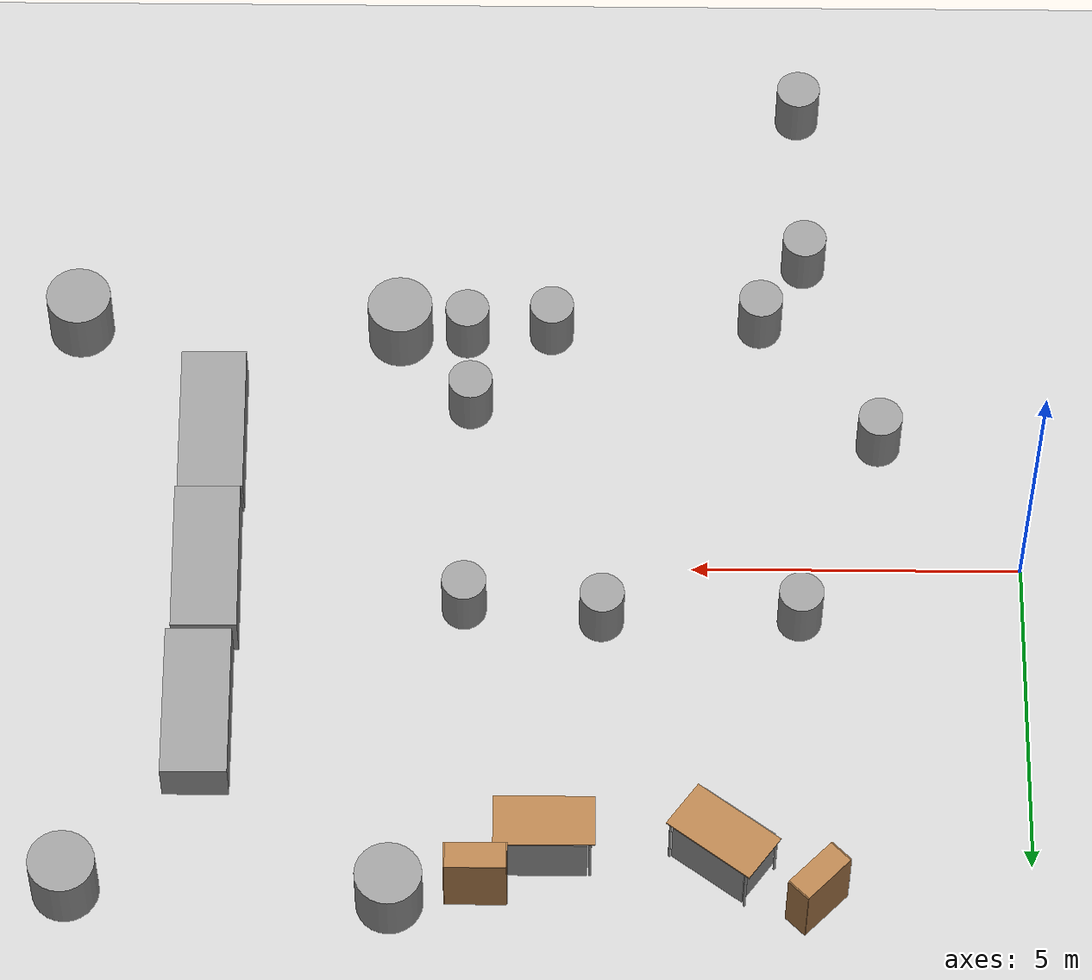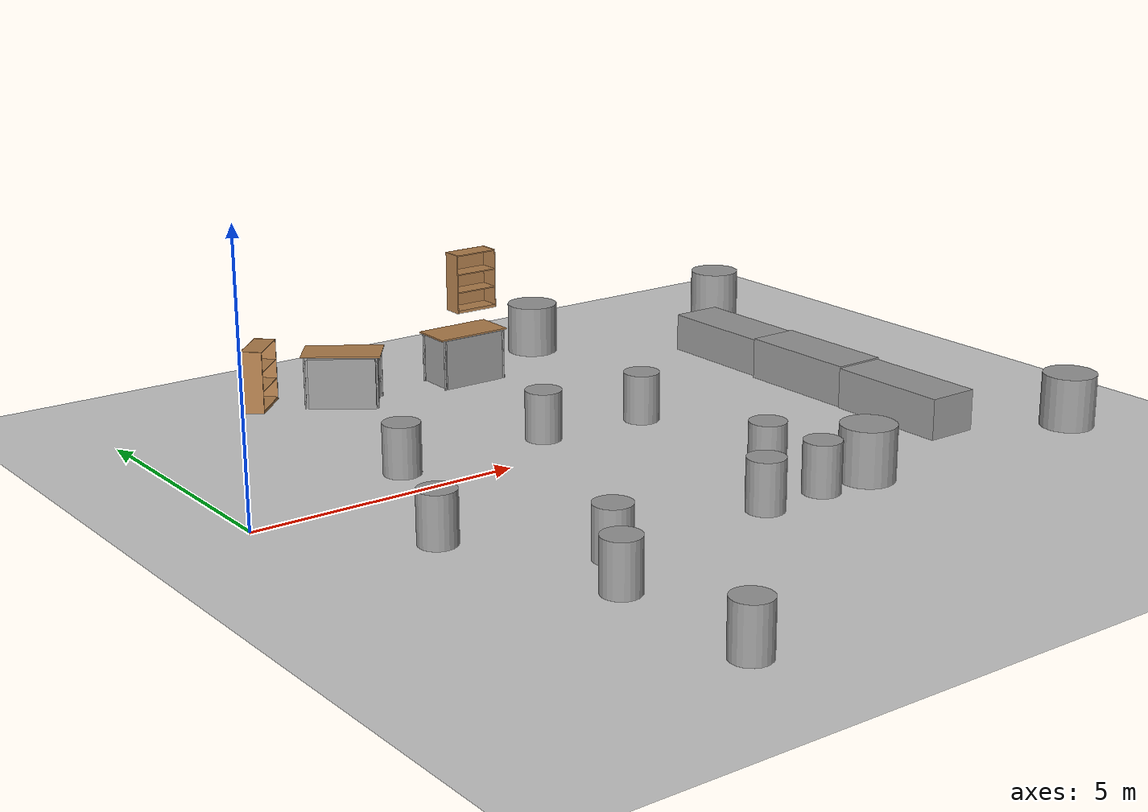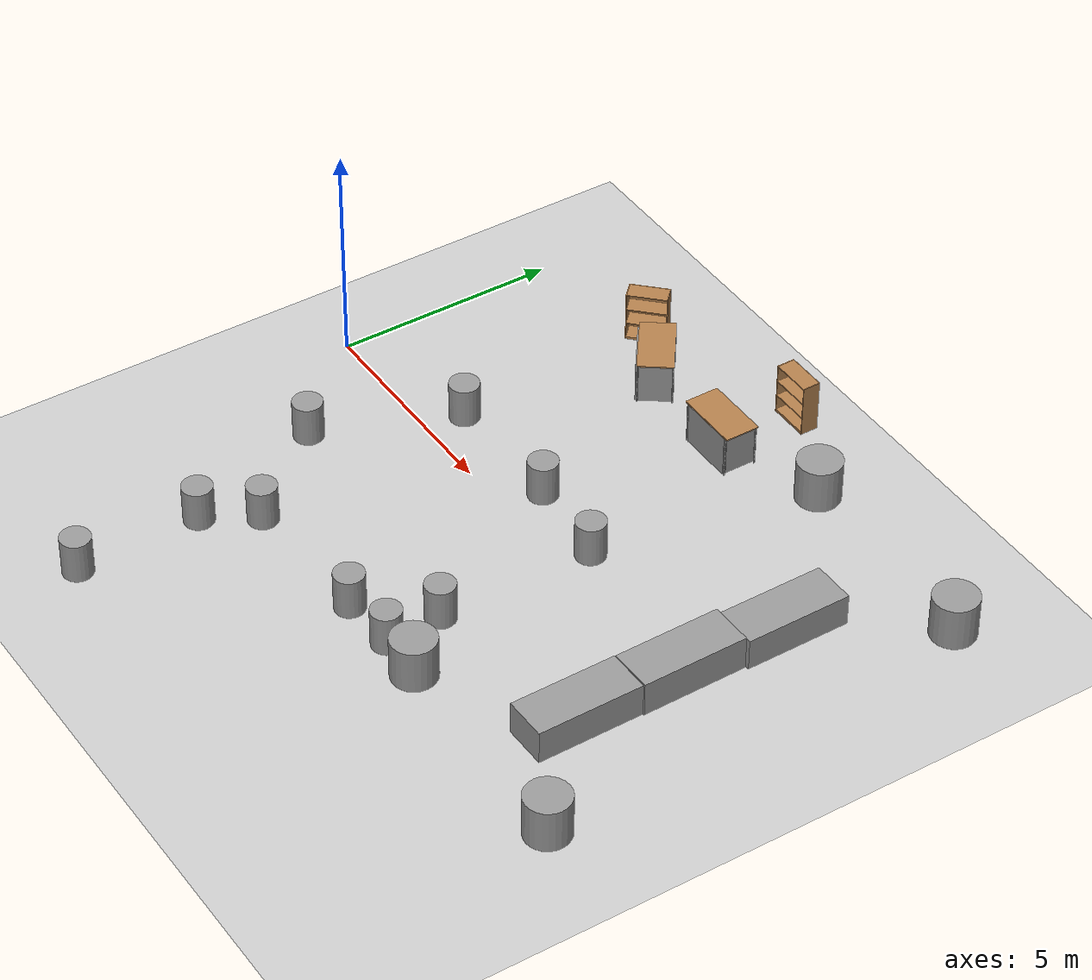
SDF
<sdf version="1.6">
 <world name="default">
  <model name="ground_plane">
   <static>true</static>
   <link name="link">
    <collision name="collision">
     <geometry><plane><normal>0 0 1</normal><size>100 100</size></plane></geometry>
     <surface>
      <contact><collide_bitmask>65535</collide_bitmask></contact>
      <friction><ode><mu>100</mu><mu2>50</mu2></ode></friction>
     </surface>
    </collision>
    <visual name="visual">
     <cast_shadows>0</cast_shadows>
     <geometry><plane><normal>0 0 1</normal><size>100 100</size></plane></geometry>
     <material>
      <script><uri>file://media/materials/scripts/gazebo.material</uri><name>Gazebo/Grey</name></script>
     </material>
    </visual>
   </link>
  </model>
  <model name="bookshelf">
   <static>true</static>
   <link name="link">
    <inertial><mass>1</mass></inertial>
    <collision name="back">
     <pose>0 0.005 0.6 0 -0 0</pose>
     <geometry><box><size>0.9 0.01 1.2</size></box></geometry>
    </collision>
    <visual name="visual1">
     <pose>0 0.005 0.6 0 -0 0</pose>
     <geometry><box><size>0.9 0.01 1.2</size></box></geometry>
     <material>
      <script><uri>file://media/materials/scripts/gazebo.material</uri><name>Gazebo/Wood</name></script>
     </material>
    </visual>
    <collision name="left_side">
     <pose>0.45 -0.195 0.6 0 -0 0</pose>
     <geometry><box><size>0.02 0.4 1.2</size></box></geometry>
    </collision>
    <visual name="visual2">
     <pose>0.45 -0.195 0.6 0 -0 0</pose>
     <geometry><box><size>0.02 0.4 1.2</size></box></geometry>
     <material>
      <script><uri>file://media/materials/scripts/gazebo.material</uri><name>Gazebo/Wood</name></script>
     </material>
    </visual>
    <collision name="right_side">
     <pose>-0.45 -0.195 0.6 0 -0 0</pose>
     <geometry><box><size>0.02 0.4 1.2</size></box></geometry>
    </collision>
    <visual name="visual3">
     <pose>-0.45 -0.195 0.6 0 -0 0</pose>
     <geometry><box><size>0.02 0.4 1.2</size></box></geometry>
     <material>
      <script><uri>file://media/materials/scripts/gazebo.material</uri><name>Gazebo/Wood</name></script>
     </material>
    </visual>
    <collision name="bottom">
     <pose>0 -0.195 0.03 0 -0 0</pose>
     <geometry><box><size>0.88 0.4 0.06</size></box></geometry>
    </collision>
    <visual name="visual4">
     <pose>0 -0.195 0.03 0 -0 0</pose>
     <geometry><box><size>0.88 0.4 0.06</size></box></geometry>
     <material>
      <script><uri>file://media/materials/scripts/gazebo.material</uri><name>Gazebo/Wood</name></script>
     </material>
    </visual>
    <collision name="top">
     <pose>0 -0.195 1.19 0 -0 0</pose>
     <geometry><box><size>0.88 0.4 0.02</size></box></geometry>
    </collision>
    <visual name="visual5">
     <pose>0 -0.195 1.19 0 -0 0</pose>
     <geometry><box><size>0.88 0.4 0.02</size></box></geometry>
     <material>
      <script><uri>file://media/materials/scripts/gazebo.material</uri><name>Gazebo/Wood</name></script>
     </material>
    </visual>
    <collision name="low_shelf">
     <pose>0 -0.195 0.43 0 -0 0</pose>
     <geometry><box><size>0.88 0.4 0.02</size></box></geometry>
    </collision>
    <visual name="visual6">
     <pose>0 -0.195 0.43 0 -0 0</pose>
     <geometry><box><size>0.88 0.4 0.02</size></box></geometry>
     <material>
      <script><uri>file://media/materials/scripts/gazebo.material</uri><name>Gazebo/Wood</name></script>
     </material>
    </visual>
    <collision name="high_shelf">
     <pose>0 -0.195 0.8 0 -0 0</pose>
     <geometry><box><size>0.88 0.4 0.02</size></box></geometry>
    </collision>
    <visual name="visual7">
     <pose>0 -0.195 0.8 0 -0 0</pose>
     <geometry><box><size>0.88 0.4 0.02</size></box></geometry>
     <material>
      <script><uri>file://media/materials/scripts/gazebo.material</uri><name>Gazebo/Wood</name></script>
     </material>
    </visual>
   </link>
   <pose>8.20219 6.18787 1.03065 0 -0 0</pose>
  </model>
  <model name="bookshelf_0">
   <static>true</static>
   <link name="link">
    <inertial><mass>1</mass></inertial>
    <collision name="back">
     <pose>0 0.005 0.6 0 -0 0</pose>
     <geometry><box><size>0.9 0.01 1.2</size></box></geometry>
    </collision>
    <visual name="visual1">
     <pose>0 0.005 0.6 0 -0 0</pose>
     <geometry><box><size>0.9 0.01 1.2</size></box></geometry>
     <material>
      <script><uri>file://media/materials/scripts/gazebo.material</uri><name>Gazebo/Wood</name></script>
     </material>
    </visual>
    <collision name="left_side">
     <pose>0.45 -0.195 0.6 0 -0 0</pose>
     <geometry><box><size>0.02 0.4 1.2</size></box></geometry>
    </collision>
    <visual name="visual2">
     <pose>0.45 -0.195 0.6 0 -0 0</pose>
     <geometry><box><size>0.02 0.4 1.2</size></box></geometry>
     <material>
      <script><uri>file://media/materials/scripts/gazebo.material</uri><name>Gazebo/Wood</name></script>
     </material>
    </visual>
    <collision name="right_side">
     <pose>-0.45 -0.195 0.6 0 -0 0</pose>
     <geometry><box><size>0.02 0.4 1.2</size></box></geometry>
    </collision>
    <visual name="visual3">
     <pose>-0.45 -0.195 0.6 0 -0 0</pose>
     <geometry><box><size>0.02 0.4 1.2</size></box></geometry>
     <material>
      <script><uri>file://media/materials/scripts/gazebo.material</uri><name>Gazebo/Wood</name></script>
     </material>
    </visual>
    <collision name="bottom">
     <pose>0 -0.195 0.03 0 -0 0</pose>
     <geometry><box><size>0.88 0.4 0.06</size></box></geometry>
    </collision>
    <visual name="visual4">
     <pose>0 -0.195 0.03 0 -0 0</pose>
     <geometry><box><size>0.88 0.4 0.06</size></box></geometry>
     <material>
      <script><uri>file://media/materials/scripts/gazebo.material</uri><name>Gazebo/Wood</name></script>
     </material>
    </visual>
    <collision name="top">
     <pose>0 -0.195 1.19 0 -0 0</pose>
     <geometry><box><size>0.88 0.4 0.02</size></box></geometry>
    </collision>
    <visual name="visual5">
     <pose>0 -0.195 1.19 0 -0 0</pose>
     <geometry><box><size>0.88 0.4 0.02</size></box></geometry>
     <material>
      <script><uri>file://media/materials/scripts/gazebo.material</uri><name>Gazebo/Wood</name></script>
     </material>
    </visual>
    <collision name="low_shelf">
     <pose>0 -0.195 0.43 0 -0 0</pose>
     <geometry><box><size>0.88 0.4 0.02</size></box></geometry>
    </collision>
    <visual name="visual6">
     <pose>0 -0.195 0.43 0 -0 0</pose>
     <geometry><box><size>0.88 0.4 0.02</size></box></geometry>
     <material>
      <script><uri>file://media/materials/scripts/gazebo.material</uri><name>Gazebo/Wood</name></script>
     </material>
    </visual>
    <collision name="high_shelf">
     <pose>0 -0.195 0.8 0 -0 0</pose>
     <geometry><box><size>0.88 0.4 0.02</size></box></geometry>
    </collision>
    <visual name="visual7">
     <pose>0 -0.195 0.8 0 -0 0</pose>
     <geometry><box><size>0.88 0.4 0.02</size></box></geometry>
     <material>
      <script><uri>file://media/materials/scripts/gazebo.material</uri><name>Gazebo/Wood</name></script>
     </material>
    </visual>
   </link>
   <pose>3.06528 5.8186 0 0 -0 0.790449</pose>
  </model>
  <model name="table">
   <static>true</static>
   <link name="link">
    <collision name="surface">
     <pose>0 0 1 0 -0 0</pose>
     <geometry><box><size>1.5 0.8 0.03</size></box></geometry>
     <surface><friction><ode><mu>0.6</mu><mu2>0.6</mu2></ode></friction></surface>
    </collision>
    <visual name="visual1">
     <pose>0 0 1 0 -0 0</pose>
     <geometry><box><size>1.5 0.8 0.03</size></box></geometry>
     <material>
      <script><uri>file://media/materials/scripts/gazebo.material</uri><name>Gazebo/Wood</name></script>
     </material>
    </visual>
    <collision name="front_left_leg">
     <pose>0.68 0.38 0.5 0 -0 0</pose>
     <geometry><cylinder><radius>0.02</radius><length>1</length></cylinder></geometry>
    </collision>
    <visual name="front_left_leg">
     <pose>0.68 0.38 0.5 0 -0 0</pose>
     <geometry><cylinder><radius>0.02</radius><length>1</length></cylinder></geometry>
     <material>
      <script><uri>file://media/materials/scripts/gazebo.material</uri><name>Gazebo/Grey</name></script>
     </material>
    </visual>
    <collision name="front_right_leg">
     <pose>0.68 -0.38 0.5 0 -0 0</pose>
     <geometry><cylinder><radius>0.02</radius><length>1</length></cylinder></geometry>
    </collision>
    <visual name="front_right_leg">
     <pose>0.68 -0.38 0.5 0 -0 0</pose>
     <geometry><cylinder><radius>0.02</radius><length>1</length></cylinder></geometry>
     <material>
      <script><uri>file://media/materials/scripts/gazebo.material</uri><name>Gazebo/Grey</name></script>
     </material>
    </visual>
    <collision name="back_right_leg">
     <pose>-0.68 -0.38 0.5 0 -0 0</pose>
     <geometry><cylinder><radius>0.02</radius><length>1</length></cylinder></geometry>
    </collision>
    <visual name="back_right_leg">
     <pose>-0.68 -0.38 0.5 0 -0 0</pose>
     <geometry><cylinder><radius>0.02</radius><length>1</length></cylinder></geometry>
     <material>
      <script><uri>file://media/materials/scripts/gazebo.material</uri><name>Gazebo/Grey</name></script>
     </material>
    </visual>
    <collision name="back_left_leg">
     <pose>-0.68 0.38 0.5 0 -0 0</pose>
     <geometry><cylinder><radius>0.02</radius><length>1</length></cylinder></geometry>
    </collision>
    <visual name="back_left_leg">
     <pose>-0.68 0.38 0.5 0 -0 0</pose>
     <geometry><cylinder><radius>0.02</radius><length>1</length></cylinder></geometry>
     <material>
      <script><uri>file://media/materials/scripts/gazebo.material</uri><name>Gazebo/Grey</name></script>
     </material>
    </visual>
   </link>
   <pose>7.22002 4.80872 0 0 -0 0</pose>
  </model>
  <model name="table_0">
   <static>true</static>
   <link name="link">
    <collision name="surface">
     <pose>0 0 1 0 -0 0</pose>
     <geometry><box><size>1.5 0.8 0.03</size></box></geometry>
     <surface><friction><ode><mu>0.6</mu><mu2>0.6</mu2></ode></friction></surface>
    </collision>
    <visual name="visual1">
     <pose>0 0 1 0 -0 0</pose>
     <geometry><box><size>1.5 0.8 0.03</size></box></geometry>
     <material>
      <script><uri>file://media/materials/scripts/gazebo.material</uri><name>Gazebo/Wood</name></script>
     </material>
    </visual>
    <collision name="front_left_leg">
     <pose>0.68 0.38 0.5 0 -0 0</pose>
     <geometry><cylinder><radius>0.02</radius><length>1</length></cylinder></geometry>
    </collision>
    <visual name="front_left_leg">
     <pose>0.68 0.38 0.5 0 -0 0</pose>
     <geometry><cylinder><radius>0.02</radius><length>1</length></cylinder></geometry>
     <material>
      <script><uri>file://media/materials/scripts/gazebo.material</uri><name>Gazebo/Grey</name></script>
     </material>
    </visual>
    <collision name="front_right_leg">
     <pose>0.68 -0.38 0.5 0 -0 0</pose>
     <geometry><cylinder><radius>0.02</radius><length>1</length></cylinder></geometry>
    </collision>
    <visual name="front_right_leg">
     <pose>0.68 -0.38 0.5 0 -0 0</pose>
     <geometry><cylinder><radius>0.02</radius><length>1</length></cylinder></geometry>
     <material>
      <script><uri>file://media/materials/scripts/gazebo.material</uri><name>Gazebo/Grey</name></script>
     </material>
    </visual>
    <collision name="back_right_leg">
     <pose>-0.68 -0.38 0.5 0 -0 0</pose>
     <geometry><cylinder><radius>0.02</radius><length>1</length></cylinder></geometry>
    </collision>
    <visual name="back_right_leg">
     <pose>-0.68 -0.38 0.5 0 -0 0</pose>
     <geometry><cylinder><radius>0.02</radius><length>1</length></cylinder></geometry>
     <material>
      <script><uri>file://media/materials/scripts/gazebo.material</uri><name>Gazebo/Grey</name></script>
     </material>
    </visual>
    <collision name="back_left_leg">
     <pose>-0.68 0.38 0.5 0 -0 0</pose>
     <geometry><cylinder><radius>0.02</radius><length>1</length></cylinder></geometry>
    </collision>
    <visual name="back_left_leg">
     <pose>-0.68 0.38 0.5 0 -0 0</pose>
     <geometry><cylinder><radius>0.02</radius><length>1</length></cylinder></geometry>
     <material>
      <script><uri>file://media/materials/scripts/gazebo.material</uri><name>Gazebo/Grey</name></script>
     </material>
    </visual>
   </link>
   <pose>4.59087 4.95601 0 0 0 -0.636579</pose>
  </model>
  <model name="unit_cylinder_4">
   <static>true</static>
   <pose>14.2565 5.52747 0.499997 4e-06 4e-06 -0</pose>
   <link name="link">
    <inertial>
     <mass>1</mass>
     <inertia><ixx>0.145833</ixx><ixy>0</ixy><ixz>0</ixz><iyy>0.145833</iyy><iyz>0</iyz><izz>0.125</izz></inertia>
    </inertial>
    <collision name="collision">
     <geometry><cylinder><radius>0.5</radius><length>1</length></cylinder></geometry>
    </collision>
    <visual name="visual">
     <geometry><cylinder><radius>0.5</radius><length>1</length></cylinder></geometry>
     <material>
      <script><name>Gazebo/Grey</name><uri>file://media/materials/scripts/gazebo.material</uri></script>
     </material>
    </visual>
   </link>
  </model>
  <model name="unit_cylinder_5">
   <static>true</static>
   <pose>14.5051 -4.23634 0.5 0 -0 5e-06</pose>
   <link name="link">
    <inertial>
     <mass>1</mass>
     <inertia><ixx>0.145833</ixx><ixy>0</ixy><ixz>0</ixz><iyy>0.145833</iyy><iyz>0</iyz><izz>0.125</izz></inertia>
    </inertial>
    <collision name="collision">
     <geometry><cylinder><radius>0.5</radius><length>1</length></cylinder></geometry>
    </collision>
    <visual name="visual">
     <geometry><cylinder><radius>0.5</radius><length>1</length></cylinder></geometry>
     <material>
      <script><name>Gazebo/Grey</name><uri>file://media/materials/scripts/gazebo.material</uri></script>
     </material>
    </visual>
   </link>
  </model>
  <model name="unit_cylinder_1_clone_2">
   <static>true</static>
   <pose>3.22669 -5.45033 0.464254 -0 -0 -0</pose>
   <link name="link">
    <inertial>
     <mass>1</mass>
     <inertia><ixx>0.145833</ixx><ixy>0</ixy><ixz>0</ixz><iyy>0.145833</iyy><iyz>0</iyz><izz>0.125</izz></inertia>
    </inertial>
    <collision name="collision">
     <geometry><cylinder><radius>0.337949</radius><length>0.928516</length></cylinder></geometry>
    </collision>
    <visual name="visual">
     <geometry><cylinder><radius>0.337949</radius><length>0.928516</length></cylinder></geometry>
     <material>
      <script><name>Gazebo/Grey</name><uri>file://media/materials/scripts/gazebo.material</uri></script>
     </material>
    </visual>
   </link>
  </model>
  <model name="unit_cylinder_1_clone_3">
   <static>true</static>
   <pose>3.27927 -8.27188 0.464254 0 -0 0</pose>
   <link name="link">
    <inertial>
     <mass>1</mass>
     <inertia><ixx>0.145833</ixx><ixy>0</ixy><ixz>0</ixz><iyy>0.145833</iyy><iyz>0</iyz><izz>0.125</izz></inertia>
    </inertial>
    <collision name="collision">
     <geometry><cylinder><radius>0.337949</radius><length>0.928516</length></cylinder></geometry>
    </collision>
    <visual name="visual">
     <geometry><cylinder><radius>0.337949</radius><length>0.928516</length></cylinder></geometry>
     <material>
      <script><name>Gazebo/Grey</name><uri>file://media/materials/scripts/gazebo.material</uri></script>
     </material>
    </visual>
   </link>
  </model>
  <model name="unit_box_0">
   <static>true</static>
   <pose>7.21526 4.81083 0.487582 1e-06 0 -0.000226</pose>
   <link name="link">
    <inertial>
     <mass>1</mass>
     <inertia>
      <ixx>0.166667</ixx>
      <ixy>0</ixy>
      <ixz>0</ixz>
      <iyy>0.166667</iyy>
      <iyz>0</iyz>
      <izz>0.166667</izz>
     </inertia>
    </inertial>
    <collision name="collision"><geometry><box><size>1.27603 0.792247 0.975162</size></box></geometry></collision>
    <visual name="visual">
     <geometry><box><size>1.27603 0.792247 0.975162</size></box></geometry>
     <material>
      <script><name>Gazebo/Grey</name><uri>file://media/materials/scripts/gazebo.material</uri></script>
     </material>
    </visual>
   </link>
  </model>
  <model name="unit_box_0_clone_0">
   <static>true</static>
   <pose>4.58289 4.92285 0.487581 -0 -0 -0.630776</pose>
   <link name="link">
    <inertial>
     <mass>1</mass>
     <inertia>
      <ixx>0.166667</ixx>
      <ixy>0</ixy>
      <ixz>0</ixz>
      <iyy>0.166667</iyy>
      <iyz>0</iyz>
      <izz>0.166667</izz>
     </inertia>
    </inertial>
    <collision name="collision"><geometry><box><size>1.27603 0.792247 0.975162</size></box></geometry></collision>
    <visual name="visual">
     <geometry><box><size>1.27603 0.792247 0.975162</size></box></geometry>
     <material>
      <script><name>Gazebo/Grey</name><uri>file://media/materials/scripts/gazebo.material</uri></script>
     </material>
    </visual>
   </link>
  </model>
  <model name="unit_box_1">
   <static>true</static>
   <pose>12.4182 2.69901 0.369808 -1e-05 0 1.5777</pose>
   <link name="link">
    <inertial>
     <mass>1</mass>
     <inertia>
      <ixx>0.166667</ixx>
      <ixy>0</ixy>
      <ixz>0</ixz>
      <iyy>0.166667</iyy>
      <iyz>0</iyz>
      <izz>0.166667</izz>
     </inertia>
    </inertial>
    <collision name="collision"><geometry><box><size>2.41905 1 0.739627</size></box></geometry></collision>
    <visual name="visual">
     <geometry><box><size>2.41905 1 0.739627</size></box></geometry>
     <material>
      <script><name>Gazebo/Grey</name><uri>file://media/materials/scripts/gazebo.material</uri></script>
     </material>
    </visual>
   </link>
  </model>
  <model name="unit_box_1_clone">
   <static>true</static>
   <pose>12.3693 0.253945 0.398704 0 -0 1.58395</pose>
   <link name="link">
    <inertial>
     <mass>1</mass>
     <inertia>
      <ixx>0.166667</ixx>
      <ixy>0</ixy>
      <ixz>0</ixz>
      <iyy>0.166667</iyy>
      <iyz>0</iyz>
      <izz>0.166667</izz>
     </inertia>
    </inertial>
    <collision name="collision"><geometry><box><size>2.41905 1 0.797408</size></box></geometry></collision>
    <visual name="visual">
     <geometry><box><size>2.41905 1 0.797408</size></box></geometry>
     <material>
      <script><name>Gazebo/Grey</name><uri>file://media/materials/scripts/gazebo.material</uri></script>
     </material>
    </visual>
   </link>
  </model>
  <model name="unit_box_1_clone_clone">
   <static>true</static>
   <pose>12.3655 -2.1726 0.386598 0 6e-05 1.5804</pose>
   <link name="link">
    <inertial>
     <mass>1</mass>
     <inertia>
      <ixx>0.166667</ixx>
      <ixy>0</ixy>
      <ixz>0</ixz>
      <iyy>0.166667</iyy>
      <iyz>0</iyz>
      <izz>0.166667</izz>
     </inertia>
    </inertial>
    <collision name="collision"><geometry><box><size>2.41905 1 0.773341</size></box></geometry></collision>
    <visual name="visual">
     <geometry><box><size>2.41905 1 0.773341</size></box></geometry>
     <material>
      <script><name>Gazebo/Grey</name><uri>file://media/materials/scripts/gazebo.material</uri></script>
     </material>
    </visual>
   </link>
  </model>
  <model name="unit_cylinder_1_clone_3_clone">
   <static>true</static>
   <pose>2.11943 -2.2018 0.464258 0 -0 0</pose>
   <link name="link">
    <inertial>
     <mass>1</mass>
     <inertia><ixx>0.145833</ixx><ixy>0</ixy><ixz>0</ixz><iyy>0.145833</iyy><iyz>0</iyz><izz>0.125</izz></inertia>
    </inertial>
    <collision name="collision">
     <geometry><cylinder><radius>0.337949</radius><length>0.928516</length></cylinder></geometry>
    </collision>
    <visual name="visual">
     <geometry><cylinder><radius>0.337949</radius><length>0.928516</length></cylinder></geometry>
     <material>
      <script><name>Gazebo/Grey</name><uri>file://media/materials/scripts/gazebo.material</uri></script>
     </material>
    </visual>
   </link>
  </model>
  <model name="unit_cylinder_1_clone_3_clone_clone_clone_1">
   <static>true</static>
   <pose>3.37793 0.886062 0.464251 -0 -0 -0</pose>
   <link name="link">
    <inertial>
     <mass>1</mass>
     <inertia><ixx>0.145833</ixx><ixy>0</ixy><ixz>0</ixz><iyy>0.145833</iyy><iyz>0</iyz><izz>0.125</izz></inertia>
    </inertial>
    <collision name="collision">
     <geometry><cylinder><radius>0.337949</radius><length>0.928516</length></cylinder></geometry>
    </collision>
    <visual name="visual">
     <geometry><cylinder><radius>0.337949</radius><length>0.928516</length></cylinder></geometry>
     <material>
      <script><name>Gazebo/Grey</name><uri>file://media/materials/scripts/gazebo.material</uri></script>
     </material>
    </visual>
   </link>
  </model>
  <model name="unit_cylinder_1_clone_3_clone_clone_clone_1_clone">
   <static>true</static>
   <pose>6.376 0.924343 0.464257 0 -0 0</pose>
   <link name="link">
    <inertial>
     <mass>1</mass>
     <inertia><ixx>0.145833</ixx><ixy>0</ixy><ixz>0</ixz><iyy>0.145833</iyy><iyz>0</iyz><izz>0.125</izz></inertia>
    </inertial>
    <collision name="collision">
     <geometry><cylinder><radius>0.337949</radius><length>0.928516</length></cylinder></geometry>
    </collision>
    <visual name="visual">
     <geometry><cylinder><radius>0.337949</radius><length>0.928516</length></cylinder></geometry>
     <material>
      <script><name>Gazebo/Grey</name><uri>file://media/materials/scripts/gazebo.material</uri></script>
     </material>
    </visual>
   </link>
  </model>
  <model name="unit_cylinder_1_clone_3_clone_clone_clone_1_clone_0">
   <static>true</static>
   <pose>8.45739 0.72717 0.464255 0 -0 0</pose>
   <link name="link">
    <inertial>
     <mass>1</mass>
     <inertia><ixx>0.145833</ixx><ixy>0</ixy><ixz>0</ixz><iyy>0.145833</iyy><iyz>0</iyz><izz>0.125</izz></inertia>
    </inertial>
    <collision name="collision">
     <geometry><cylinder><radius>0.337949</radius><length>0.928516</length></cylinder></geometry>
    </collision>
    <visual name="visual">
     <geometry><cylinder><radius>0.337949</radius><length>0.928516</length></cylinder></geometry>
     <material>
      <script><name>Gazebo/Grey</name><uri>file://media/materials/scripts/gazebo.material</uri></script>
     </material>
    </visual>
   </link>
  </model>
  <model name="unit_cylinder_1_clone_3_clone_clone_clone_1_clone_1">
   <static>true</static>
   <pose>8.47414 -4.11588 0.464253 -1e-06 -1e-06 0</pose>
   <link name="link">
    <inertial>
     <mass>1</mass>
     <inertia><ixx>0.145833</ixx><ixy>0</ixy><ixz>0</ixz><iyy>0.145833</iyy><iyz>0</iyz><izz>0.125</izz></inertia>
    </inertial>
    <collision name="collision">
     <geometry><cylinder><radius>0.337949</radius><length>0.928516</length></cylinder></geometry>
    </collision>
    <visual name="visual">
     <geometry><cylinder><radius>0.337949</radius><length>0.928516</length></cylinder></geometry>
     <material>
      <script><name>Gazebo/Grey</name><uri>file://media/materials/scripts/gazebo.material</uri></script>
     </material>
    </visual>
   </link>
  </model>
  <model name="unit_cylinder_1_clone_3_clone_clone_clone_1_clone_1_clone">
   <static>true</static>
   <pose>8.40874 -2.82207 0.464255 0 -0 0</pose>
   <link name="link">
    <inertial>
     <mass>1</mass>
     <inertia><ixx>0.145833</ixx><ixy>0</ixy><ixz>0</ixz><iyy>0.145833</iyy><iyz>0</iyz><izz>0.125</izz></inertia>
    </inertial>
    <collision name="collision">
     <geometry><cylinder><radius>0.337949</radius><length>0.928516</length></cylinder></geometry>
    </collision>
    <visual name="visual">
     <geometry><cylinder><radius>0.337949</radius><length>0.928516</length></cylinder></geometry>
     <material>
      <script><name>Gazebo/Grey</name><uri>file://media/materials/scripts/gazebo.material</uri></script>
     </material>
    </visual>
   </link>
  </model>
  <model name="unit_cylinder_1_clone_3_clone_clone_clone_1_clone_1_clone_0">
   <static>true</static>
   <pose>7.16434 -4.18642 0.464253 2e-06 1e-06 0</pose>
   <link name="link">
    <inertial>
     <mass>1</mass>
     <inertia><ixx>0.145833</ixx><ixy>0</ixy><ixz>0</ixz><iyy>0.145833</iyy><iyz>0</iyz><izz>0.125</izz></inertia>
    </inertial>
    <collision name="collision">
     <geometry><cylinder><radius>0.337949</radius><length>0.928516</length></cylinder></geometry>
    </collision>
    <visual name="visual">
     <geometry><cylinder><radius>0.337949</radius><length>0.928516</length></cylinder></geometry>
     <material>
      <script><name>Gazebo/Grey</name><uri>file://media/materials/scripts/gazebo.material</uri></script>
     </material>
    </visual>
   </link>
  </model>
  <model name="unit_cylinder_1_clone_3_clone_clone_clone_1_clone_1_clone_1">
   <static>true</static>
   <pose>3.9216 -4.33385 0.464255 0 -0 0</pose>
   <link name="link">
    <inertial>
     <mass>1</mass>
     <inertia><ixx>0.145833</ixx><ixy>0</ixy><ixz>0</ixz><iyy>0.145833</iyy><iyz>0</iyz><izz>0.125</izz></inertia>
    </inertial>
    <collision name="collision">
     <geometry><cylinder><radius>0.337949</radius><length>0.928516</length></cylinder></geometry>
    </collision>
    <visual name="visual">
     <geometry><cylinder><radius>0.337949</radius><length>0.928516</length></cylinder></geometry>
     <material>
      <script><name>Gazebo/Grey</name><uri>file://media/materials/scripts/gazebo.material</uri></script>
     </material>
    </visual>
   </link>
  </model>
  <model name="unit_cylinder_4_clone">
   <static>true</static>
   <pose>9.48456 5.68137 0.499992 -3e-06 2e-06 0</pose>
   <link name="link">
    <inertial>
     <mass>1</mass>
     <inertia><ixx>0.145833</ixx><ixy>0</ixy><ixz>0</ixz><iyy>0.145833</iyy><iyz>0</iyz><izz>0.125</izz></inertia>
    </inertial>
    <collision name="collision">
     <geometry><cylinder><radius>0.5</radius><length>1</length></cylinder></geometry>
    </collision>
    <visual name="visual">
     <geometry><cylinder><radius>0.5</radius><length>1</length></cylinder></geometry>
     <material>
      <script><name>Gazebo/Grey</name><uri>file://media/materials/scripts/gazebo.material</uri></script>
     </material>
    </visual>
   </link>
  </model>
  <model name="unit_cylinder_4_clone_0">
   <static>true</static>
   <pose>9.51806 -4.11936 0.499997 3e-06 2e-06 0</pose>
   <link name="link">
    <inertial>
     <mass>1</mass>
     <inertia><ixx>0.145833</ixx><ixy>0</ixy><ixz>0</ixz><iyy>0.145833</iyy><iyz>0</iyz><izz>0.125</izz></inertia>
    </inertial>
    <collision name="collision">
     <geometry><cylinder><radius>0.5</radius><length>1</length></cylinder></geometry>
    </collision>
    <visual name="visual">
     <geometry><cylinder><radius>0.5</radius><length>1</length></cylinder></geometry>
     <material>
      <script><name>Gazebo/Grey</name><uri>file://media/materials/scripts/gazebo.material</uri></script>
     </material>
    </visual>
   </link>
  </model>
 </world>
</sdf>
